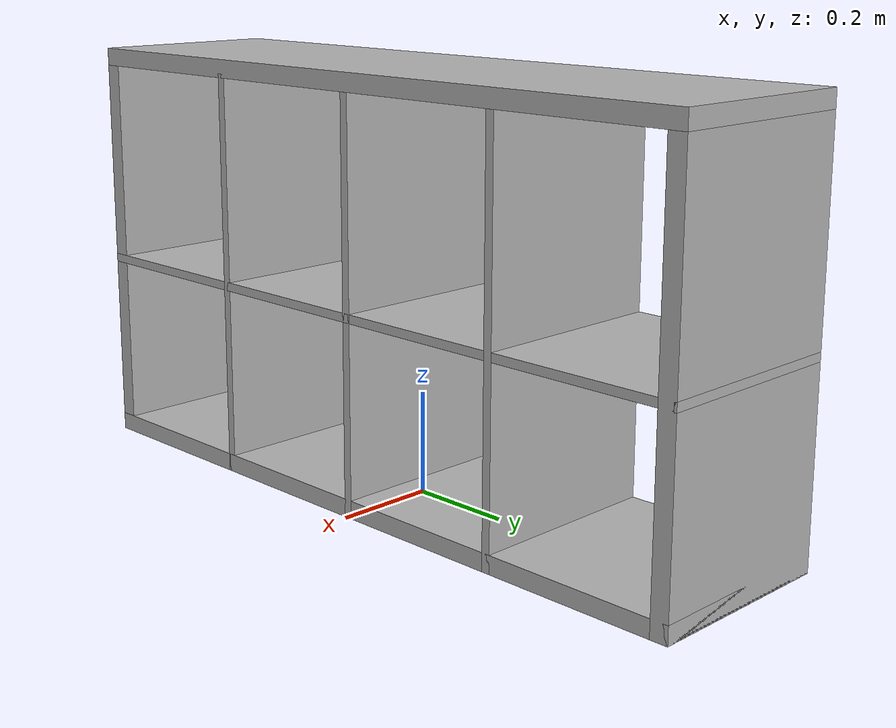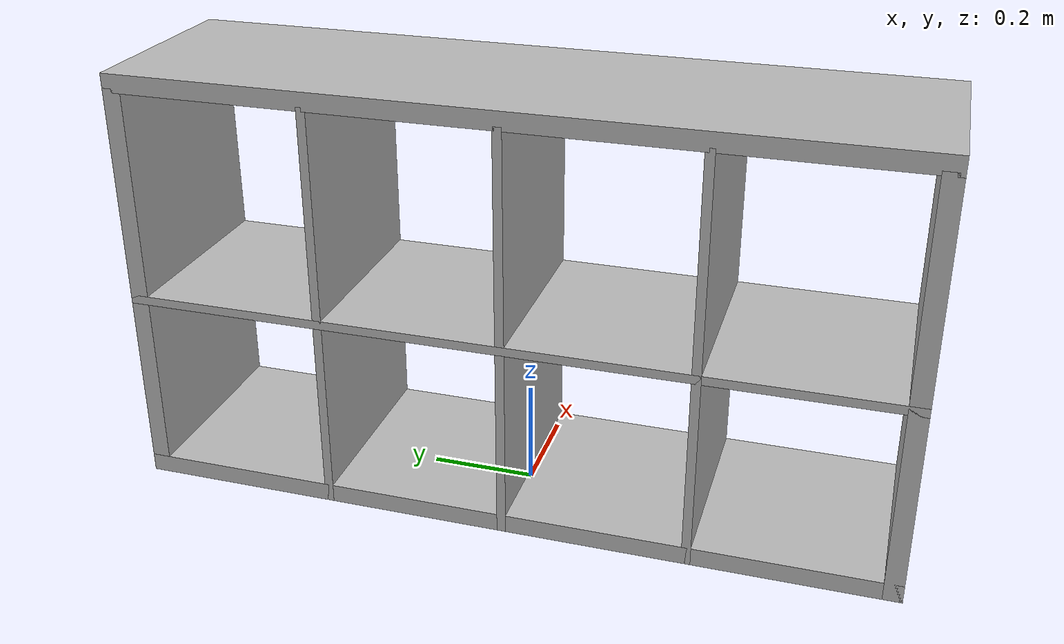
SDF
<?xml version="1.0"?>
<sdf version="1.6">
  <model name="reo2016/sideboard">
    <link name="1_link">
      <collision name="1_col">
        <geometry>
          <box>
            <size>0.39 1.465 0.035</size>
          </box>
        </geometry>
      </collision>
      <visual name="1_vis">
        <geometry>
          <box>
            <size>0.39 1.465 0.035</size>
          </box>
        </geometry>
      </visual>
      <pose>0.0 0.0 0.0175 0 0 0</pose>
    </link>
    <link name="2_link">
      <collision name="2_col">
        <geometry>
          <box>
            <size>0.39 1.465 0.017</size>
          </box>
        </geometry>
      </collision>
      <visual name="2_vis">
        <geometry>
          <box>
            <size>0.39 1.465 0.017</size>
          </box>
        </geometry>
      </visual>
      <pose>0.0 0.0 0.3815 0 0 0</pose>
    </link>
    <link name="3_link">
      <collision name="3_col">
        <geometry>
          <box>
            <size>0.39 1.465 0.035</size>
          </box>
        </geometry>
      </collision>
      <visual name="3_vis">
        <geometry>
          <box>
            <size>0.39 1.465 0.035</size>
          </box>
        </geometry>
      </visual>
      <pose>0.0 0.0 0.805 0 0 0</pose>
    </link>
    <link name="4_link">
      <collision name="4_col">
        <geometry>
          <box>
            <size>0.39 0.035 0.795</size>
          </box>
        </geometry>
      </collision>
      <visual name="4_vis">
        <geometry>
          <box>
            <size>0.39 0.035 0.795</size>
          </box>
        </geometry>
      </visual>
      <pose>0.0 -0.715 0.3975 0 0 0</pose>
    </link>
    <link name="5_link">
      <collision name="5_col">
        <geometry>
          <box>
            <size>0.39 0.017 0.795</size>
          </box>
        </geometry>
      </collision>
      <visual name="5_vis">
        <geometry>
          <box>
            <size>0.39 0.017 0.795</size>
          </box>
        </geometry>
      </visual>
      <pose>0.0 -0.35 0.3975 0 0 0</pose>
    </link>
    <link name="6_link">
      <collision name="6_col">
        <geometry>
          <box>
            <size>0.39 0.017 0.795</size>
          </box>
        </geometry>
      </collision>
      <visual name="6_vis">
        <geometry>
          <box>
            <size>0.39 0.017 0.795</size>
          </box>
        </geometry>
      </visual>
      <pose>0.0 0 0.3975 0 0 0</pose>
    </link>
    <link name="7_link">
      <collision name="7_col">
        <geometry>
          <box>
            <size>0.39 0.017 0.795</size>
          </box>
        </geometry>
      </collision>
      <visual name="7_vis">
        <geometry>
          <box>
            <size>0.39 0.017 0.795</size>
          </box>
        </geometry>
      </visual>
      <pose>0.0 0.35 0.3975 0 0 0</pose>
    </link>
    <link name="8_link">
      <collision name="8_col">
        <geometry>
          <box>
            <size>0.39 0.035 0.795</size>
          </box>
        </geometry>
      </collision>
      <visual name="8_vis">
        <geometry>
          <box>
            <size>0.39 0.035 0.795</size>
          </box>
        </geometry>
      </visual>
      <pose>0.0 0.715 0.3975 0 0 0</pose>
    </link>
    <link name="on_top_of">
      <virtual_volume name="on_top_of_vv">
        <geometry>
          <box>
            <size>0.4 1.46 0.25</size>
          </box>
        </geometry>
        <pose>0.0 0.0 0.985 0 0 0</pose>
      </virtual_volume>
    </link>
    <link name="on_top_of_left">
      <virtual_volume name="on_top_of_left_vv">
        <geometry>
          <box>
            <size>0.4 0.73 0.25</size>
          </box>
        </geometry>
        <pose>0.0 -0.365 0.985 0 0 0</pose>
      </virtual_volume>
    </link>
    <link name="on_top_of_right">
      <virtual_volume name="on_top_of_right_vv">
        <geometry>
          <box>
            <size>0.4 0.73 0.25</size>
          </box>
        </geometry>
        <pose>0.0 0.365 0.985 0 0 0</pose>
      </virtual_volume>
    </link>
    <link name="in_front_of">
      <virtual_volume name="in_front_of_vv">
        <geometry>
          <box>
            <size>0.2 0.5 0.01</size>
          </box>
        </geometry>
        <pose>-0.9 0.0 0.005 0 0 0</pose>
      </virtual_volume>
    </link>
    <static>true</static>
  </model>
</sdf>
